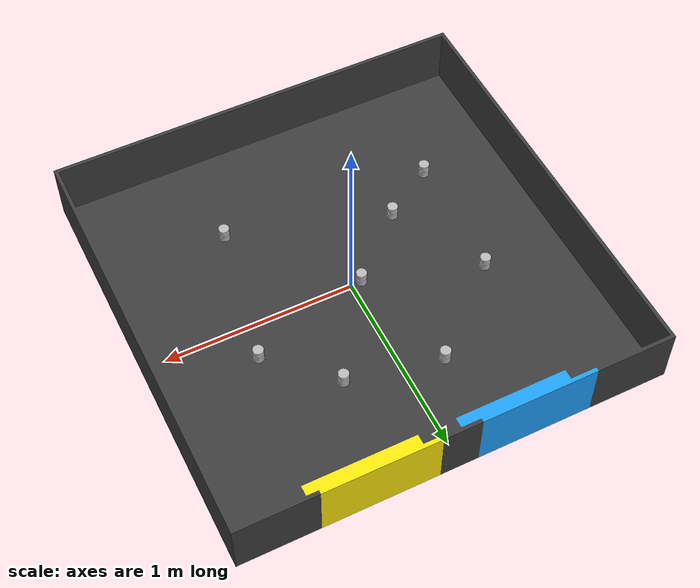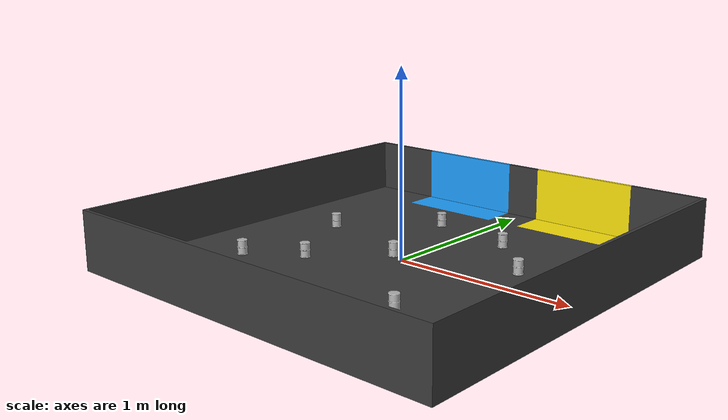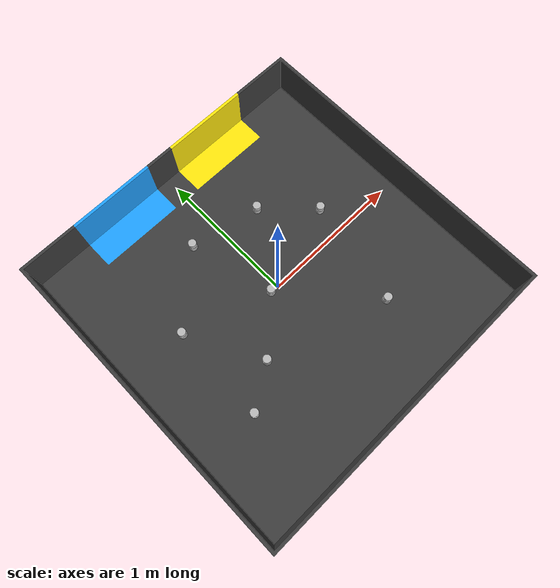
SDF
<sdf version='1.9'>
  <world name='empty'>
    <physics name='1ms' type='ignored'>
      <max_step_size>0.001</max_step_size>
      <real_time_factor>1</real_time_factor>
      <real_time_update_rate>1000</real_time_update_rate>
    </physics>
    <plugin name='gz::sim::systems::Physics' filename='ignition-gazebo-physics-system' />
    <plugin name='gz::sim::systems::UserCommands' filename='ignition-gazebo-user-commands-system' />
    <plugin name='gz::sim::systems::SceneBroadcaster'
      filename='ignition-gazebo-scene-broadcaster-system' />
    <plugin name='gz::sim::systems::Contact' filename='ignition-gazebo-contact-system' />
    <gravity>0 0 -9.8</gravity>
    <magnetic_field>6e-06 2.3e-05 -4.2e-05</magnetic_field>
    <atmosphere type='adiabatic' />
    <scene>
      <ambient>0.4 0.4 0.4 1</ambient>
      <background>0.7 0.7 0.7 1</background>
      <shadows>false</shadows>
    </scene>

    <include>
      <uri>model://models/eco_disaster_arena</uri>
      <name>eco_disaster</name>
      <pose>0 0 0 0 0 0</pose>
    </include>

    <include>
      <uri>model://models/barrel_red</uri>
      <name>br_1</name>
      <pose>-0.672 -0.4871 0 0 0 0</pose>
    </include>

    <include>
      <uri>model://models/barrel_red</uri>
      <name>br_2</name>
      <pose>-0.3911 -0.3058 0 0 0 0</pose>
    </include>

    <include>
      <uri>model://models/barrel_red</uri>
      <name>br_3</name>
      <pose>0.5902 0.192 0 0 0 0</pose>
    </include>

    <include>
      <uri>model://models/barrel_red</uri>
      <name>br_4</name>
      <pose>-0.2098 0.5938 0 0 0 0</pose>
    </include>

    <include>
      <uri>model://models/barrel_green</uri>
      <name>bg_1</name>
      <pose>0.4444 -0.5582 0 0 0 0</pose>
    </include>

    <include>
      <uri>model://models/barrel_green</uri>
      <name>bg_2</name>
      <pose>-0.0569 0.0036 0 0 0 0</pose>
    </include>

    <include>
      <uri>model://models/barrel_green</uri>
      <name>bg_3</name>
      <pose>-0.6578 0.192 0 0 0 0</pose>
    </include>

    <include>
      <uri>model://models/barrel_green</uri>
      <name>bg_4</name>
      <pose>0.2844 0.4942 0 0 0 0</pose>
    </include>

    <light name='sun' type='directional'>
      <pose>0 0 10 0 -0 0</pose>
      <cast_shadows>false</cast_shadows>
      <intensity>1</intensity>
      <direction>-0.5 0.1 -0.9</direction>
      <diffuse>0.8 0.8 0.8 1</diffuse>
      <specular>0.2 0.2 0.2 1</specular>
      <attenuation>
        <range>1000</range>
        <linear>0.01</linear>
        <constant>0.90000000000000002</constant>
        <quadratic>0.001</quadratic>
      </attenuation>
      <spot>
        <inner_angle>0</inner_angle>
        <outer_angle>0</outer_angle>
        <falloff>0</falloff>
      </spot>
    </light>

  </world>
</sdf>

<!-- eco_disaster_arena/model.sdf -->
<sdf version="1.5">
  <model name='eco_disaster_arena'>
    <link name='link'>
      <visual name='visual'>
        <geometry>
          <mesh>
            <uri>meshes/Eco_Disaster_Arena.dae</uri>
          </mesh>
        </geometry>
      </visual>

      <collision name='collision'>
        <geometry>
          <mesh>
            <uri>meshes/Eco_Disaster_Arena.dae</uri>
          </mesh>
        </geometry>
        <surface>
        <friction>
          <ode>
            <mu>0.6</mu>
            <mu2>0.6</mu2>
          </ode>
        </friction>
      </surface>
      </collision>

      <pose>0 0 0 0 -0 0</pose>
      <inertial>
        <pose>0 0 0 0 -0 0</pose>
        <mass>1</mass>
        <inertia>
          <ixx>1</ixx>
          <ixy>0</ixy>
          <ixz>0</ixz>
          <iyy>1</iyy>
          <iyz>0</iyz>
          <izz>1</izz>
        </inertia>
      </inertial>
      <enable_wind>false</enable_wind>
    </link>
    <static>true</static>
    <self_collide>false</self_collide>
  </model>
</sdf>

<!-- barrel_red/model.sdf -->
<sdf version="1.5">
  <model name='barrel_red'>
    <static>false</static>
    <self_collide>false</self_collide>

    <link name='link'>

      <visual name='visual'>
        <geometry>
          <mesh>
            <uri>meshes/Barrel_Red.obj</uri>
            <scale>0.001 0.001 0.001</scale>
          </mesh>
        </geometry>

      </visual>

      <collision name='collision'>
        <geometry>
          <mesh>
            <uri>meshes/Barrel_Red_collision.obj</uri>
            <scale>0.001 0.001 0.001</scale>
          </mesh>
        </geometry>
      </collision>

      <pose>0.0 0.0 0.0 0.0 0.0 0.0</pose>

      <!--inertia
      as solid cylinder w=45g, D=50mm, h=80mm-->
      <inertial>
        <mass>0.045</mass>
        <inertia>
          <ixx>3.10e-5</ixx>
          <iyy>3.10e-5</iyy>
          <izz>1.41e-5</izz>
          <ixy>0.0</ixy>
          <ixz>0.0</ixz>
          <iyz>0.0</iyz>
        </inertia>
      </inertial>

      <enable_wind>false</enable_wind>

    </link>

  </model>
</sdf>

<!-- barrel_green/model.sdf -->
<sdf version="1.5">
  <model name='barrel_green'>
    <static>false</static>
    <self_collide>false</self_collide>

    <link name='link'>

      <visual name='visual'>
        <geometry>
          <mesh>
            <uri>meshes/Barrel_Green.obj</uri>
            <scale>0.001 0.001 0.001</scale>
          </mesh>
        </geometry>

      </visual>

      <collision name='collision'>
        <geometry>
          <mesh>
            <uri>meshes/Barrel_Green_collision.obj</uri>
            <scale>0.001 0.001 0.001</scale>
          </mesh>
        </geometry>
      </collision>

      <pose>0.0 0.0 0.0 0.0 0.0 0.0</pose>

      <!--inertia
      as solid cylinder w=45g, D=50mm, h=80mm-->
      <inertial>
        <mass>0.045</mass>
        <inertia>
          <ixx>3.10e-5</ixx>
          <iyy>3.10e-5</iyy>
          <izz>1.41e-5</izz>
          <ixy>0.0</ixy>
          <ixz>0.0</ixz>
          <iyz>0.0</iyz>
        </inertia>
      </inertial>

      <enable_wind>false</enable_wind>

    </link>

  </model>
</sdf>
